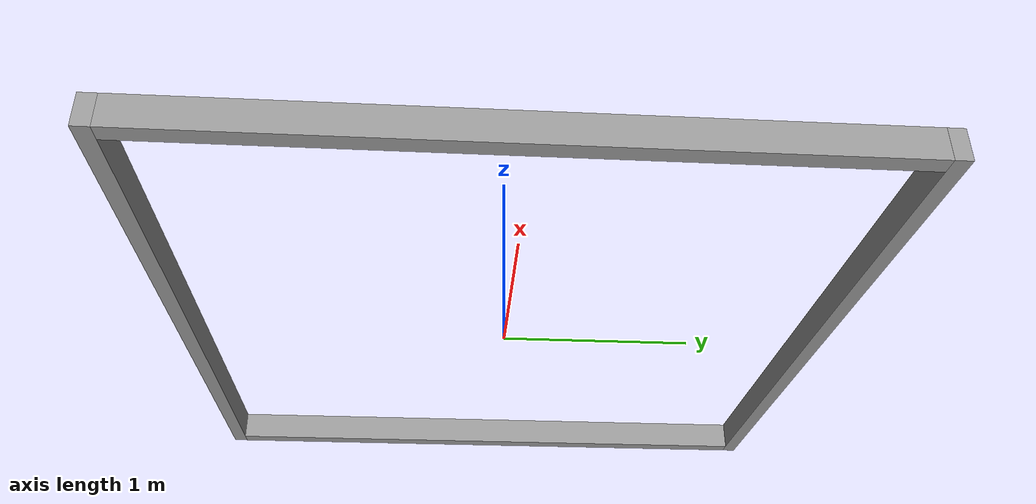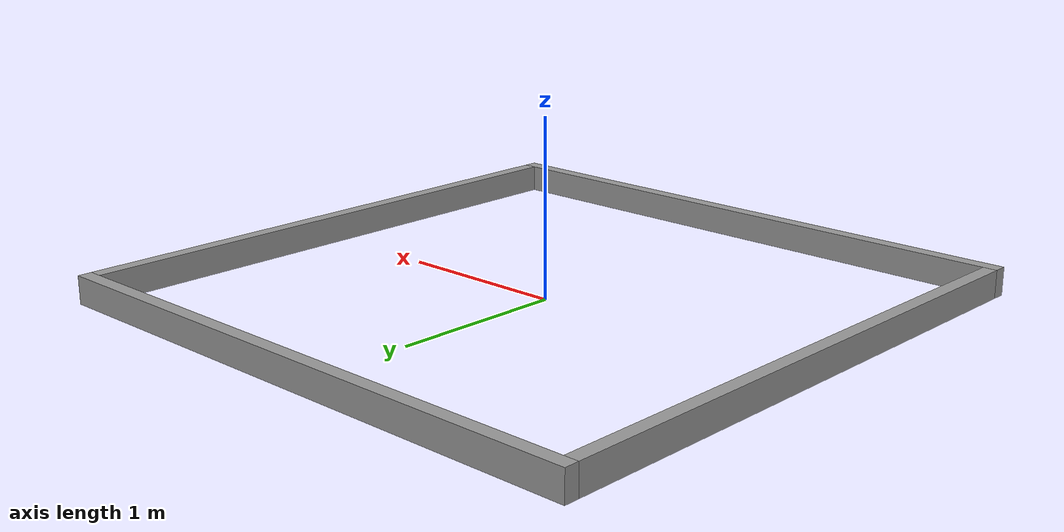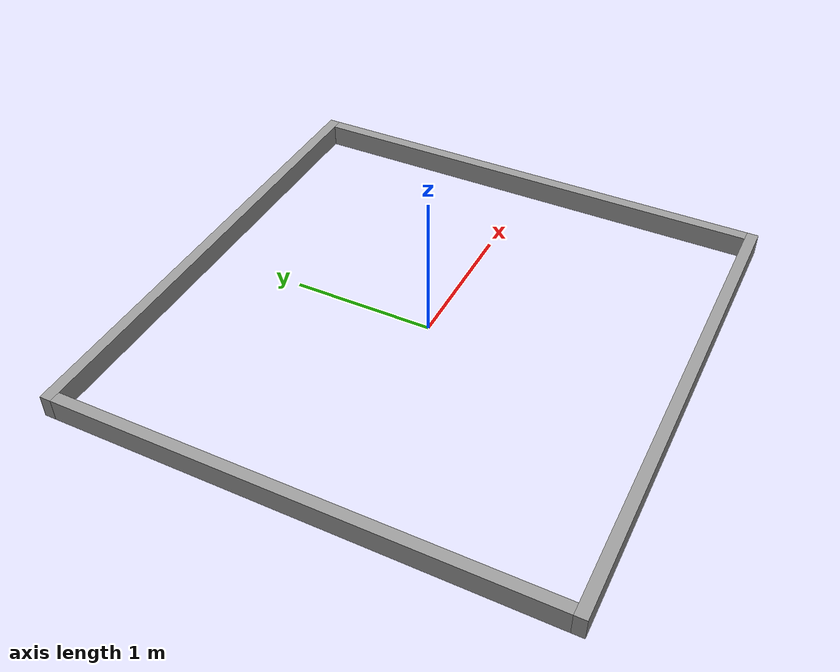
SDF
<?xml version='1.0'?>
<sdf version='1.6'>
  <model name='small_arena_walls'>
    <pose frame=''>0 0 0.08 0 0 0</pose>
    <link name='Right_Wall'>
      <collision name='Right_Wall_Collision'>
        <geometry>
          <box>
            <size>3.50 0.08 0.16</size>
          </box>
        </geometry>
      </collision>
      <visual name='Right_Wall_Visual'>
        <geometry>
          <box>
            <size>3.50 0.08 0.16</size>
          </box>
        </geometry>
        <material>
          <script>
            <uri>file://media/materials/scripts/gazebo.material</uri>
            <name>Gazebo/Grey</name>
          </script>
          <ambient>1 1 1 1</ambient>
        </material>
      </visual>
      <pose frame=''>0 1.71 0 0 0 0</pose>
    </link>
    <link name='Back_Wall'>
      <collision name='Back_Wall_Collision'>
        <geometry>
          <box>
            <size>0.08 3.34 0.16</size>
          </box>
        </geometry>
      </collision>
      <visual name='Back_Wall_Visual'>
        <geometry>
          <box>
            <size>0.08 3.34 0.16</size>
          </box>
        </geometry>
        <material>
          <script>
            <uri>file://media/materials/scripts/gazebo.material</uri>
            <name>Gazebo/Grey</name>
          </script>
          <ambient>1 1 1 1</ambient>
        </material>
      </visual>
      <pose frame=''>-1.71 0 0 0 0 0</pose>
    </link>
    <link name='Left_Wall'>
      <collision name='Left_Wall_Collision'>
        <geometry>
          <box>
            <size>3.50 0.08 0.16</size>
          </box>
        </geometry>
      </collision>
      <visual name='Left_Wall_Visual'>
        <geometry>
          <box>
            <size>3.50 0.08 0.16</size>
          </box>
        </geometry>
        <material>
          <script>
            <uri>file://media/materials/scripts/gazebo.material</uri>
            <name>Gazebo/Grey</name>
          </script>
          <ambient>1 1 1 1</ambient>
        </material>
      </visual>
      <pose frame=''>0 -1.71 0 0 0 0</pose>
    </link>
    <link name='Front_Wall'>
      <collision name='Front_Wall_Collision'>
        <geometry>
          <box>
            <size>0.08 3.34 0.16</size>
          </box>
        </geometry>
      </collision>
      <visual name='Front_Wall_Visual'>
        <geometry>
          <box>
            <size>0.08 3.34 0.16</size>
          </box>
        </geometry>
        <material>
          <script>
            <uri>file://media/materials/scripts/gazebo.material</uri>
            <name>Gazebo/Grey</name>
          </script>
          <ambient>1 1 1 1</ambient>
        </material>
      </visual>
      <pose frame=''>1.71 0 0 0 0 0</pose>
    </link>
    <static>1</static>
  </model>
</sdf>
